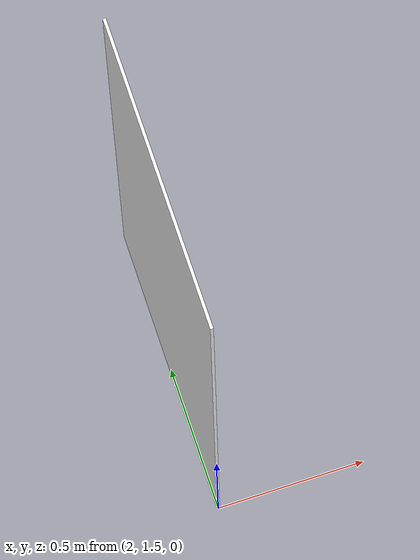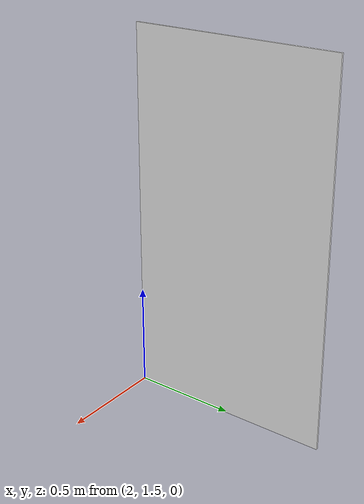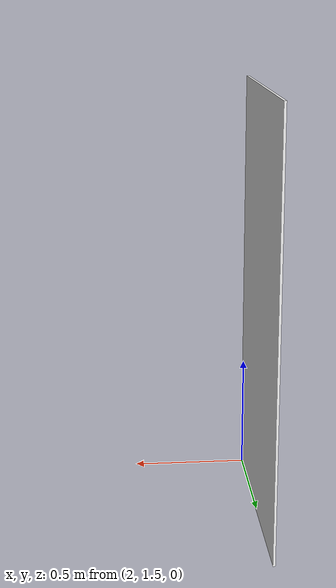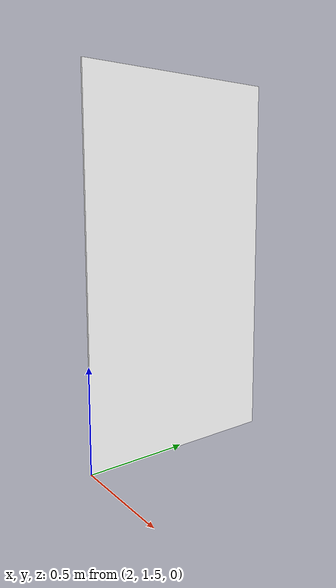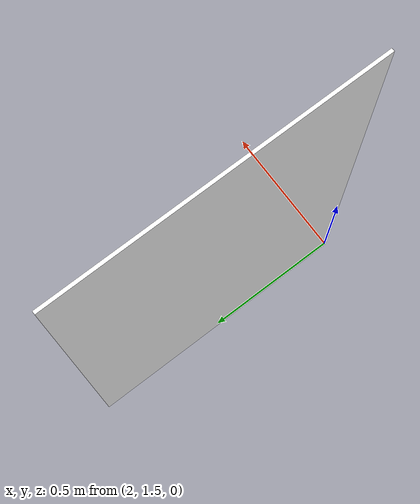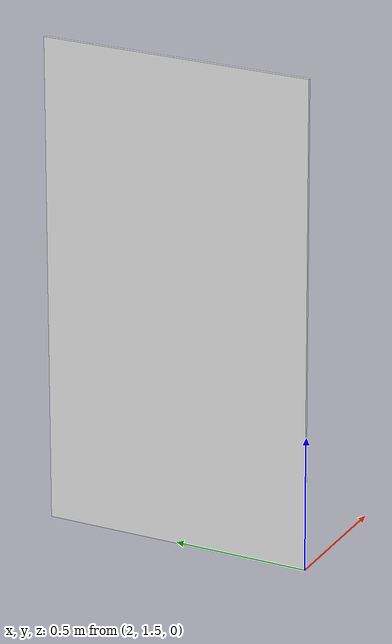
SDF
<?xml version="1.0" ?>
<sdf version="1.6">
  <model name="myBox">
    <static>true</static>
    <pose>2 2 0.9 0 0 0</pose>

    <link name="link">
      <visual name="imageFace">
        <pose>0 0 0 0 0 0</pose>
        <geometry>
          <box>
            <size>0.01 1.0 1.8</size>
          </box>
        </geometry>
        <material>
          <diffuse>1 1 1 1</diffuse>
          <specular>0 0 0 1</specular>
        </material>
      </visual>
    </link>

    <plugin
      filename="libros_video_texture_plugin.so"
      name="video_texture_plugin::VideoTexturePlugin">

      <video_path>/home/jilia/SAI5/src/video_publisher/video_publisher/video.mp4</video_path>

      <topic>/video_stream</topic>

      <fps>30</fps>
    </plugin>

  </model>
</sdf>
